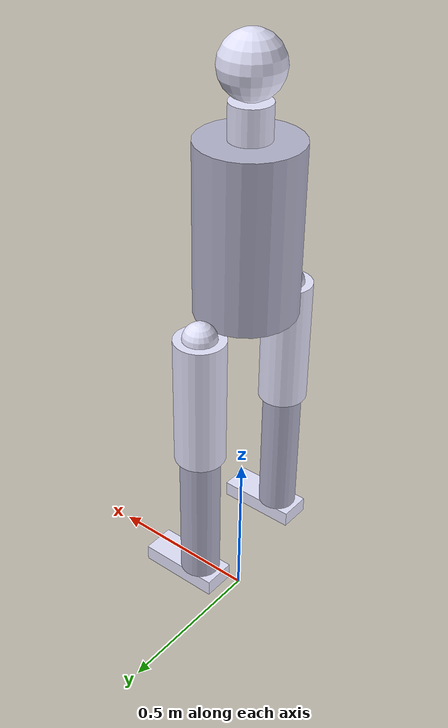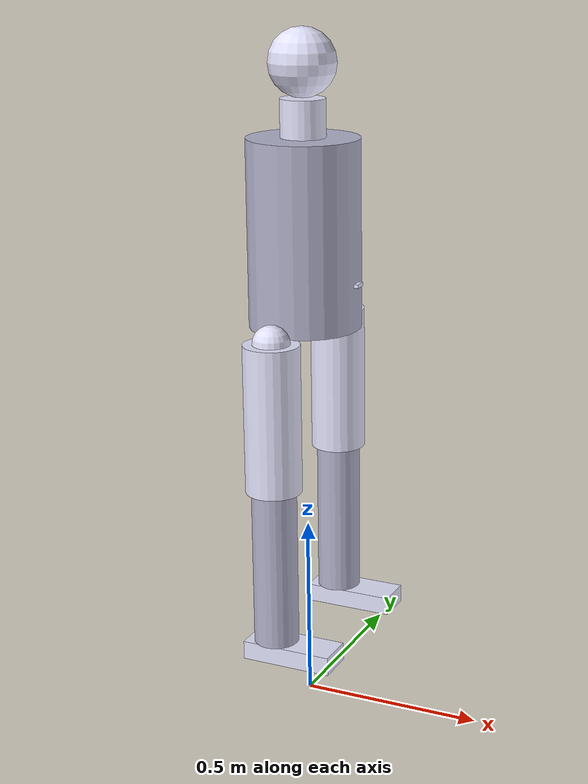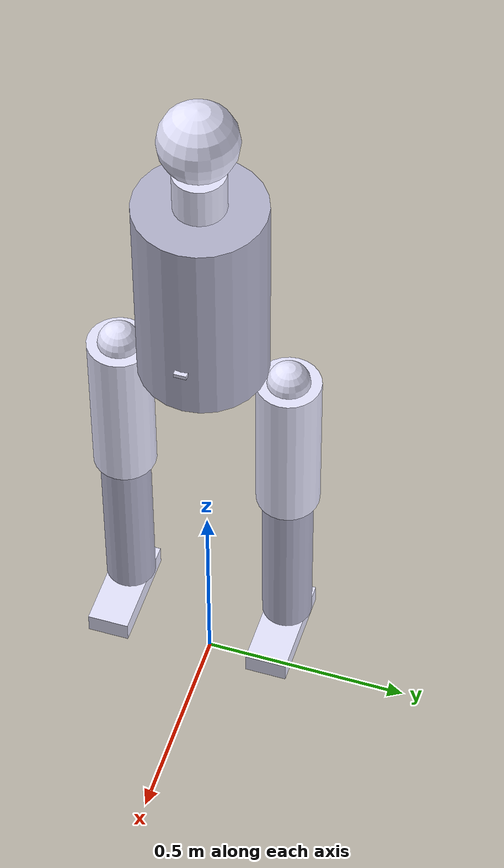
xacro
<?xml version="1.0"?>
<robot xmlns:xacro="http://www.ros.org/wiki/xacro" name="myrobot_st5">

  <!-- Body properties - Valores exatos da tese -->
  <xacro:property name="body_radius" value="0.15" />
  <xacro:property name="body_length" value="0.50" />
  <xacro:property name="body_mass" value="35.1" />

  <!-- Inertia for solid cylinder (axis z): Ixx = Iyy = (1/12)*m*(3*r^2+h^2); Izz = (1/2)*m*r^2 -->
  <xacro:property name="body_ixx" value="${(1.0/12.0) * body_mass * (3 * body_radius * body_radius + body_length * body_length)}" />
  <xacro:property name="body_iyy" value="${(1.0/12.0) * body_mass * (3 * body_radius * body_radius + body_length * body_length)}" />
  <xacro:property name="body_izz" value="${0.5 * body_mass * body_radius * body_radius}" />

  <!-- Neck properties -->
  <xacro:property name="neck_radius" value="0.06" />
  <xacro:property name="neck_length" value="0.10" />
  <xacro:property name="neck_mass" value="1.0" />
  <xacro:property name="neck_ixx" value="${(1.0/12.0) * neck_mass * (3 * neck_radius * neck_radius + neck_length * neck_length)}" />
  <xacro:property name="neck_iyy" value="${(1.0/12.0) * neck_mass * (3 * neck_radius * neck_radius + neck_length * neck_length)}" />
  <xacro:property name="neck_izz" value="${0.5 * neck_mass * neck_radius * neck_radius}" />

  <!-- Head properties -->
  <xacro:property name="head_radius" value="0.09" />
  <xacro:property name="head_mass" value="4.5" />
  <xacro:property name="head_ixx" value="${0.4 * head_mass * head_radius * head_radius}" />
  <xacro:property name="head_iyy" value="${0.4 * head_mass * head_radius * head_radius}" />
  <xacro:property name="head_izz" value="${0.4 * head_mass * head_radius * head_radius}" />

  <!-- Hip properties -->
  <xacro:property name="hip_radius" value="0.05" />
  <xacro:property name="hip_mass" value="0.0" />
  <xacro:property name="hip_ixx" value="${0.4 * hip_mass * hip_radius * hip_radius}" />
  <xacro:property name="hip_iyy" value="${0.4 * hip_mass * hip_radius * hip_radius}" />
  <xacro:property name="hip_izz" value="${0.4 * hip_mass * hip_radius * hip_radius}" />

  <!-- Thigh properties -->
  <xacro:property name="thigh_radius" value="0.075" />
  <xacro:property name="thigh_length" value="0.40" />
  <xacro:property name="thigh_mass" value="18.5" />
  <xacro:property name="thigh_ixx" value="${(1.0/12.0) * thigh_mass * (3 * thigh_radius * thigh_radius + thigh_length * thigh_length)}" />
  <xacro:property name="thigh_iyy" value="${(1.0/12.0) * thigh_mass * (3 * thigh_radius * thigh_radius + thigh_length * thigh_length)}" />
  <xacro:property name="thigh_izz" value="${0.5 * thigh_mass * thigh_radius * thigh_radius}" />

  <!-- Knee properties -->
  <xacro:property name="knee_radius" value="0.04" />
  <xacro:property name="knee_mass" value="0.0" />
  <xacro:property name="knee_ixx" value="${0.4 * knee_mass * knee_radius * knee_radius}" />
  <xacro:property name="knee_iyy" value="${0.4 * knee_mass * knee_radius * knee_radius}" />
  <xacro:property name="knee_izz" value="${0.4 * knee_mass * knee_radius * knee_radius}" />

  <!-- Shin properties -->
  <xacro:property name="shin_radius" value="0.06" />
  <xacro:property name="shin_length" value="0.43" />
  <xacro:property name="shin_mass" value="7.6" />
  <xacro:property name="shin_ixx" value="${(1.0/12.0) * shin_mass * (3 * shin_radius * shin_radius + shin_length * shin_length)}" />
  <xacro:property name="shin_iyy" value="${(1.0/12.0) * shin_mass * (3 * shin_radius * shin_radius + shin_length * shin_length)}" />
  <xacro:property name="shin_izz" value="${0.5 * shin_mass * shin_radius * shin_radius}" />

  <!-- Ankle properties -->
  <xacro:property name="ankle_radius" value="0.03" />
  <xacro:property name="ankle_mass" value="0.0" />
  <xacro:property name="ankle_ixx" value="${0.4 * ankle_mass * ankle_radius * ankle_radius}" />
  <xacro:property name="ankle_iyy" value="${0.4 * ankle_mass * ankle_radius * ankle_radius}" />
  <xacro:property name="ankle_izz" value="${0.4 * ankle_mass * ankle_radius * ankle_radius}" />

  <!-- Foot properties -->
  <xacro:property name="foot_length" value="0.25" />
  <xacro:property name="foot_width" value="0.10" />
  <xacro:property name="foot_height" value="0.05" />
  <xacro:property name="foot_offset_front" value="0.05" />
  <xacro:property name="foot_mass" value="2.1" />
  <xacro:property name="foot_ixx" value="${(1.0/12.0) * foot_mass * (foot_width * foot_width + foot_height * foot_height)}" />
  <xacro:property name="foot_iyy" value="${(1.0/12.0) * foot_mass * (foot_length * foot_length + foot_height * foot_height)}" />
  <xacro:property name="foot_izz" value="${(1.0/12.0) * foot_mass * (foot_length * foot_length + foot_width * foot_width)}" />

  <!-- IMU properties -->
  <xacro:property name="imu_length" value="0.02" />
  <xacro:property name="imu_width" value="0.03" />
  <xacro:property name="imu_height" value="0.01" />
  <xacro:property name="imu_mass" value="0.01" />
  <xacro:property name="imu_ixx" value="${(1.0/12.0) * imu_mass * (imu_width * imu_width + imu_height * imu_height)}" />
  <xacro:property name="imu_iyy" value="${(1.0/12.0) * imu_mass * (imu_length * imu_length + imu_height * imu_height)}" />
  <xacro:property name="imu_izz" value="${(1.0/12.0) * imu_mass * (imu_length * imu_length + imu_width * imu_width)}" />

  <!-- CONTROL PARAMETERS - AJUSTADOS PARA ESTABILIDADE -->
  <xacro:property name="joint_damping" value="10.0" />
  <xacro:property name="joint_friction" value="0.1" />
  <xacro:property name="joint_effort" value="5000" />
  <xacro:property name="joint_velocity" value="3.0" />
  <xacro:property name="position_gain" value="0.5" />

  <!-- Materials -->
  <material name="robot_material_1">
    <color rgba="0.7 0.7 0.8 1"/>
  </material>
  <material name="robot_material_2">
    <color rgba="0.9 0.9 1.0 1"/>
  </material>

  <!-- Altura total -->
  <xacro:property name="leg_total_length" value="${hip_radius + thigh_length + 2 * knee_radius + shin_length + 2 * ankle_radius + foot_height}" />
  <xacro:property name="body_offset" value="${body_length/2 + leg_total_length}" />
  <xacro:property name="deg_to_rad" value="${3.14159 / 180}" />

  <!-- Body (main cylinder) -->
  <link name="base_link">
    <visual>
      <origin xyz="0 0 ${body_offset}"/>
      <geometry>
        <cylinder length="${body_length}" radius="${body_radius}"/>
      </geometry>
      <material name="robot_material_1"/>
    </visual>
    <collision>
      <origin xyz="0 0 ${body_offset}"/>
      <geometry>
        <cylinder length="${body_length}" radius="${body_radius}"/>
      </geometry>
    </collision>
    <inertial>
      <origin xyz="0 0 ${body_offset}"/>
      <mass value="${body_mass}"/>
      <inertia ixx="${body_ixx}" ixy="0.0" ixz="0.0" iyy="${body_iyy}" iyz="0.0" izz="${body_izz}"/>
    </inertial>
  </link>

  <!-- IMU (simulated sensor, offset from body center) -->
  <link name="imu_link">
    <visual>
      <origin xyz="0 0 0" rpy="0 0 0"/>
      <geometry>
        <box size="${imu_length} ${imu_width} ${imu_height}"/>
      </geometry>
      <material name="robot_material_2"/>
    </visual>
    <collision>
      <origin xyz="0 0 0" rpy="0 0 0"/>
      <geometry>
        <box size="${imu_length} ${imu_width} ${imu_height}"/>
      </geometry>
    </collision>
    <inertial>
      <mass value="${imu_mass}"/>
      <inertia ixx="${imu_ixx}" ixy="0.0" ixz="0.0" iyy="${imu_iyy}" iyz="0.0" izz="${imu_izz}"/>
    </inertial>
  </link>

  <joint name="base_to_imu" type="fixed">
    <parent link="base_link"/>
    <child link="imu_link"/>
    <origin xyz="${body_radius} 0 ${body_offset - body_length/4}" rpy="0 0 0"/>
  </joint>

  <!-- Neck -->
  <link name="neck_link">
    <visual>
      <origin xyz="0 0 ${neck_length/2}" rpy="0 0 0"/>
      <geometry>
        <cylinder length="${neck_length}" radius="${neck_radius}"/>
      </geometry>
      <material name="robot_material_2"/>
    </visual>
    <collision>
      <origin xyz="0 0 ${neck_length/2}" rpy="0 0 0"/>
      <geometry>
        <cylinder length="${neck_length}" radius="${neck_radius}"/>
      </geometry>
    </collision>
    <inertial>
      <origin xyz="0 0 ${neck_length/2}" rpy="0 0 0"/>
      <mass value="${neck_mass}"/>
      <inertia ixx="${neck_ixx}" ixy="0.0" ixz="0.0" iyy="${neck_iyy}" iyz="0.0" izz="${neck_izz}"/>
    </inertial>
  </link>

  <!-- Neck joint: body to neck -->
  <joint name="base_to_neck" type="fixed">
    <parent link="base_link"/>
    <child link="neck_link"/>
    <origin xyz="0 0 ${body_offset + body_length/2}"/>
  </joint>

  <!-- Head (sphere) -->
  <link name="head_link">
    <visual>
      <origin rpy="0 0 0" xyz="0 0 ${head_radius}"/>
      <geometry>
        <sphere radius="${head_radius}"/>
      </geometry>
      <material name="robot_material_2"/>
    </visual>
    <collision>
      <origin rpy="0 0 0" xyz="0 0 ${head_radius}"/>
      <geometry>
        <sphere radius="${head_radius}"/>
      </geometry>
    </collision>
    <inertial>
      <origin rpy="0 0 0" xyz="0 0 ${head_radius}"/>
      <mass value="${head_mass}"/>
      <inertia ixx="${head_ixx}" ixy="0.0" ixz="0.0" iyy="${head_iyy}" iyz="0.0" izz="${head_izz}"/>
    </inertial>
  </link>

  <!-- Head joint: neck to head -->
  <joint name="neck_to_head" type="fixed">
    <parent link="neck_link"/>
    <child link="head_link"/>
    <origin xyz="0 0 ${neck_length}"/>
  </joint>

  <!-- Leg macro (creates left/right leg: thigh, shin, foot) -->
  <xacro:macro name="leg" params="prefix reflect">
    <!-- Hip joint: base_link to hip ball - FLEXÃO/EXTENSÃO -->
    <joint name="base_to_${prefix}_hip_ball" type="revolute">
      <parent link="base_link"/>
      <child link="${prefix}_hip_ball_link"/>
      <origin xyz="0 ${(body_radius + hip_radius) * reflect} ${body_offset - body_length/2}"/>
      <axis xyz="0 1 0"/>
      <limit lower="${-45 * deg_to_rad}" upper="${45 * deg_to_rad}" effort="${joint_effort}" velocity="${joint_velocity}"/>
      <dynamics damping="${joint_damping}" friction="${joint_friction}"/>
    </joint>

    <!-- Hip Ball -->
    <link name="${prefix}_hip_ball_link">
      <visual>
        <origin rpy="0 0 0" xyz="0 0 0"/>
        <geometry>
          <sphere radius="${hip_radius}"/>
        </geometry>
        <material name="robot_material_2"/>
      </visual>
      <collision>
        <origin rpy="0 0 0" xyz="0 0 0"/>
        <geometry>
          <sphere radius="${hip_radius}"/>
        </geometry>
      </collision>
      <inertial>
        <mass value="${hip_mass}"/>
        <inertia ixx="${hip_ixx}" ixy="0.0" ixz="0.0" iyy="${hip_iyy}" iyz="0.0" izz="${hip_izz}"/>
      </inertial>
    </link>

    <!-- Hip joint: ABDUÇÃO/ADUÇÃO -->
    <joint name="hip_ball_to_${prefix}_thigh" type="revolute">
      <parent link="${prefix}_hip_ball_link"/>
      <child link="${prefix}_thigh_abduction_link"/>
      <origin xyz="0 0 0"/>
      <axis xyz="1 0 0"/>
      <limit lower="${-25 * deg_to_rad}" upper="${25 * deg_to_rad}" effort="${joint_effort}" velocity="${joint_velocity}"/>
      <dynamics damping="${joint_damping}" friction="${joint_friction}"/>
    </joint>

    <link name="${prefix}_thigh_abduction_link">
      <visual>
        <origin rpy="0 0 0" xyz="0 0 0"/>
        <geometry>
          <sphere radius="${hip_radius * 0.5}"/>
        </geometry>
        <material name="robot_material_2"/>
      </visual>
      <inertial>
        <mass value="0.1"/>
        <inertia ixx="0.001" ixy="0.0" ixz="0.0" iyy="0.001" iyz="0.0" izz="0.001"/>
      </inertial>
    </link>

    <!-- Hip joint: ROTAÇÃO -->
    <joint name="${prefix}_thigh_abduction_to_rotation" type="revolute">
      <parent link="${prefix}_thigh_abduction_link"/>
      <child link="${prefix}_thigh_rotation_link"/>
      <origin xyz="0 0 0"/>
      <axis xyz="0 0 1"/>
      <limit lower="${-20 * deg_to_rad}" upper="${20 * deg_to_rad}" effort="${joint_effort}" velocity="${joint_velocity}"/>
      <dynamics damping="${joint_damping}" friction="${joint_friction}"/>
    </joint>

    <link name="${prefix}_thigh_rotation_link">
      <visual>
        <origin rpy="0 0 0" xyz="0 0 0"/>
        <geometry>
          <sphere radius="${hip_radius * 0.3}"/>
        </geometry>
        <material name="robot_material_2"/>
      </visual>
      <inertial>
        <mass value="0.1"/>
        <inertia ixx="0.001" ixy="0.0" ixz="0.0" iyy="0.001" iyz="0.0" izz="0.001"/>
      </inertial>
    </link>

    <!-- Hip joint: rotação to thigh -->
    <joint name="${prefix}_thigh_rotation_to_thigh" type="fixed">
      <parent link="${prefix}_thigh_rotation_link"/>
      <child link="${prefix}_thigh_link"/>
      <origin xyz="0 0 0"/>
    </joint>

    <!-- Thigh -->
    <link name="${prefix}_thigh_link">
      <visual>
        <origin rpy="0 0 0" xyz="0 0 ${-thigh_length/2}"/>
        <geometry>
          <cylinder length="${thigh_length}" radius="${thigh_radius}"/>
        </geometry>
        <material name="robot_material_2"/>
      </visual>
      <collision>
        <origin rpy="0 0 0" xyz="0 0 ${-thigh_length/2}"/>
        <geometry>
          <cylinder length="${thigh_length}" radius="${thigh_radius}"/>
        </geometry>
      </collision>
      <inertial>
        <origin rpy="0 0 0" xyz="0 0 ${-thigh_length/2}"/>
        <mass value="${thigh_mass}"/>
        <inertia ixx="${thigh_ixx}" ixy="0.0" ixz="0.0" iyy="${thigh_iyy}" iyz="0.0" izz="${thigh_izz}"/>
      </inertial>
    </link>

    <!-- Knee joint: thigh to knee ball -->
    <joint name="${prefix}_thigh_to_knee_ball" type="fixed">
      <parent link="${prefix}_thigh_link"/>
      <child link="${prefix}_knee_ball_link"/>
      <origin xyz="0 0 ${-thigh_length}"/>
    </joint>

    <!-- Knee Ball -->
    <link name="${prefix}_knee_ball_link">
      <visual>
        <origin rpy="0 0 0" xyz="0 0 0"/>
        <geometry>
          <sphere radius="${knee_radius}"/>
        </geometry>
        <material name="robot_material_2"/>
      </visual>
      <collision>
        <origin rpy="0 0 0" xyz="0 0 0"/>
        <geometry>
          <sphere radius="${knee_radius}"/>
        </geometry>
      </collision>
      <inertial>
        <mass value="${knee_mass}"/>
        <inertia ixx="${knee_ixx}" ixy="0.0" ixz="0.0" iyy="${knee_iyy}" iyz="0.0" izz="${knee_izz}"/>
      </inertial>
    </link>

    <!-- Knee joint: knee ball to shin -->
    <joint name="${prefix}_knee_ball_to_shin" type="revolute">
      <parent link="${prefix}_knee_ball_link"/>
      <child link="${prefix}_shin_link"/>
      <origin xyz="0 0 0"/>
      <axis xyz="0 1 0"/>
      <limit lower="${0 * deg_to_rad}" upper="${90 * deg_to_rad}" effort="${joint_effort}" velocity="${joint_velocity}"/>
      <dynamics damping="${joint_damping}" friction="${joint_friction}"/>
    </joint>

    <!-- Shin -->
    <link name="${prefix}_shin_link">
      <visual>
        <origin rpy="0 0 0" xyz="0 0 ${-shin_length/2}"/>
        <geometry>
          <cylinder length="${shin_length}" radius="${shin_radius}"/>
        </geometry>
        <material name="robot_material_1"/>
      </visual>
      <collision>
        <origin rpy="0 0 0" xyz="0 0 ${-shin_length/2}"/>
        <geometry>
          <cylinder length="${shin_length}" radius="${shin_radius}"/>
        </geometry>
      </collision>
      <inertial>
        <origin rpy="0 0 0" xyz="0 0 ${-shin_length/2}"/>
        <mass value="${shin_mass}"/>
        <inertia ixx="${shin_ixx}" ixy="0.0" ixz="0.0" iyy="${shin_iyy}" iyz="0.0" izz="${shin_izz}"/>
      </inertial>
    </link>

    <!-- Ankle joint: shin to ankle ball - FLEXÃO PLANTAR/DORSIFLEXÃO -->
    <joint name="${prefix}_shin_to_ankle_ball" type="revolute">
      <parent link="${prefix}_shin_link"/>
      <child link="${prefix}_ankle_ball_link"/>
      <origin xyz="0 0 ${-shin_length}"/>
      <axis xyz="0 1 0"/>
      <limit lower="${-20 * deg_to_rad}" upper="${20 * deg_to_rad}" effort="${joint_effort}" velocity="${joint_velocity}"/>
      <dynamics damping="${joint_damping}" friction="${joint_friction}"/>
    </joint>

    <!-- Ankle Ball -->
    <link name="${prefix}_ankle_ball_link">
      <visual>
        <origin rpy="0 0 0" xyz="0 0 0"/>
        <geometry>
          <sphere radius="${ankle_radius}"/>
        </geometry>
        <material name="robot_material_2"/>
      </visual>
      <collision>
        <origin rpy="0 0 0" xyz="0 0 0"/>
        <geometry>
          <sphere radius="${ankle_radius}"/>
        </geometry>
      </collision>
      <inertial>
        <mass value="${ankle_mass}"/>
        <inertia ixx="${ankle_ixx}" ixy="0.0" ixz="0.0" iyy="${ankle_iyy}" iyz="0.0" izz="${ankle_izz}"/>
      </inertial>
    </link>

    <!-- Ankle joint: ankle ball to foot - INVERSÃO/EVERSÃO -->
    <joint name="${prefix}_ankle_ball_to_foot" type="revolute">
      <parent link="${prefix}_ankle_ball_link"/>
      <child link="${prefix}_foot_link"/>
      <origin xyz="0 0 0"/>
      <axis xyz="1 0 0"/>
      <limit lower="${-10 * deg_to_rad}" upper="${10 * deg_to_rad}" effort="${joint_effort}" velocity="${joint_velocity}"/>
      <dynamics damping="${joint_damping}" friction="${joint_friction}"/>
    </joint>

    <!-- Foot -->
    <link name="${prefix}_foot_link">
      <visual>
        <origin rpy="0 0 0" xyz="${foot_offset_front} 0 ${-foot_height/2}"/>
        <geometry>
          <box size="${foot_length} ${foot_width} ${foot_height}"/>
        </geometry>
        <material name="robot_material_2"/>
      </visual>
      <collision>
        <origin rpy="0 0 0" xyz="${foot_offset_front} 0 ${-foot_height/2}"/>
        <geometry>
          <box size="${foot_length} ${foot_width} ${foot_height}"/>
        </geometry>
      </collision>
      <inertial>
        <origin rpy="0 0 0" xyz="${foot_offset_front} 0 ${-foot_height/2}"/>
        <mass value="${foot_mass}"/>
        <inertia ixx="${foot_ixx}" ixy="0.0" ixz="0.0" iyy="${foot_iyy}" iyz="0.0" izz="${foot_izz}"/>
      </inertial>
    </link>
  </xacro:macro>

  <!-- Instantiate right and left legs -->
  <xacro:leg prefix="right" reflect="-1" />
  <xacro:leg prefix="left" reflect="1" />

</robot>
